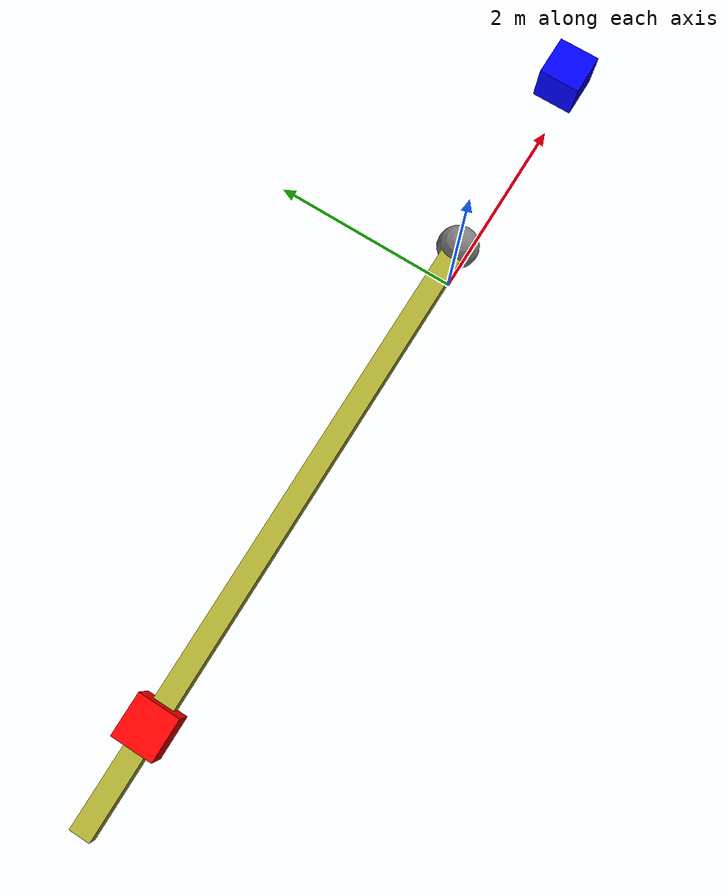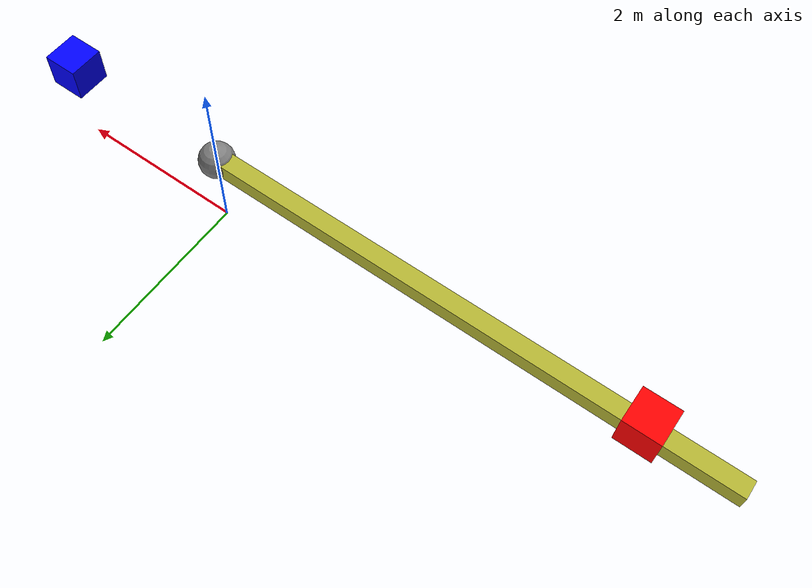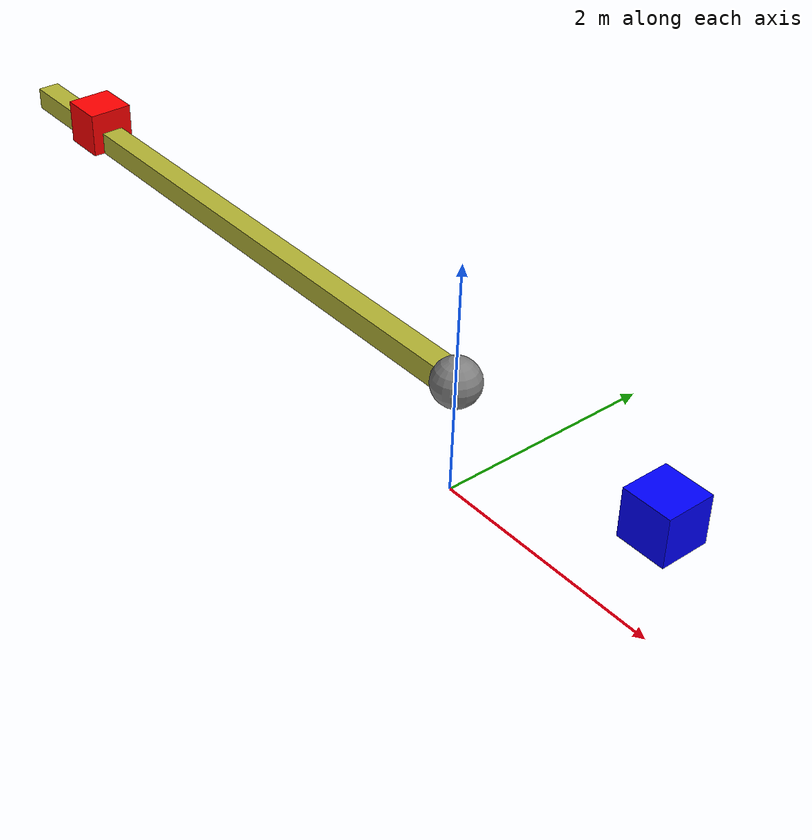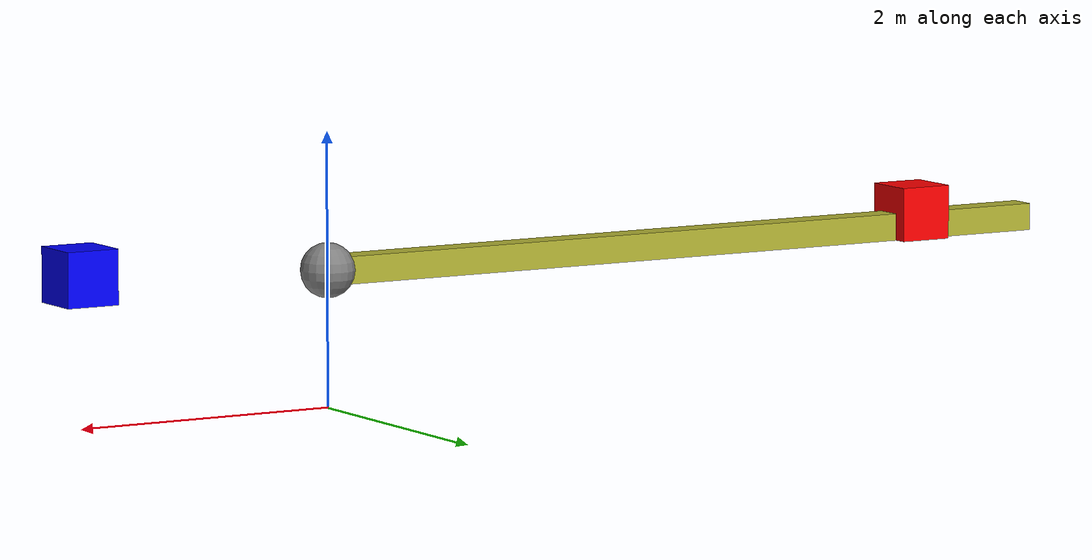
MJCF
<mujoco>
  <option gravity="0 0 -9.81"/>
  <worldbody>
    <!-- Fulcrum -->
    <body name="fulcrum" pos="0 0 1">
      <geom type="sphere" size="0.2" rgba="0.5 0.5 0.5 1"/>
    </body>
    <!-- Beam -->
    <body name="beam" pos="-3 0 1">
      <geom type="box" size="3 0.1 0.1" rgba="0.7 0.7 0.2 1"/>
    </body>
    <!-- Weight 1 -->
    <body name="weight1" pos="-5 0 1.1">
      <geom type="box" size="0.2 0.2 0.2" rgba="1 0 0 1"/>
      <joint name="weight1_joint" type="free"/>
    </body>
    <!-- Weight 2 -->
    <body name="weight2" pos="2 0 1.1">
      <geom type="box" size="0.2 0.2 0.2" rgba="0 0 1 1"/>
      <joint name="weight2_joint" type="free"/>
    </body>
  </worldbody>
</mujoco>
